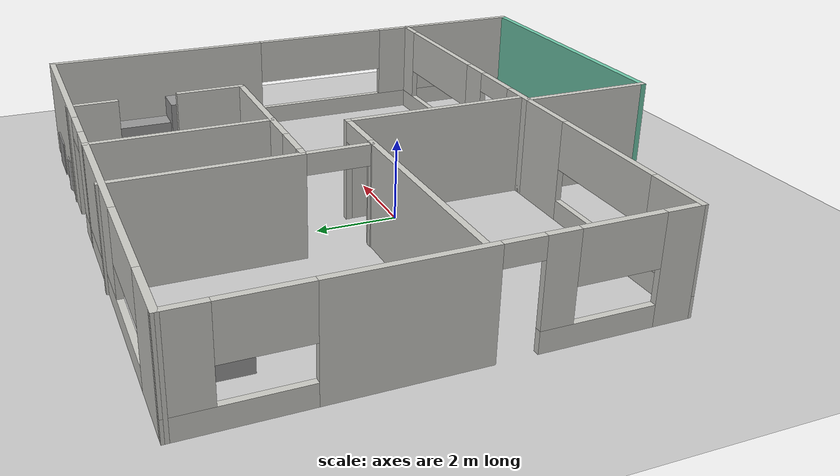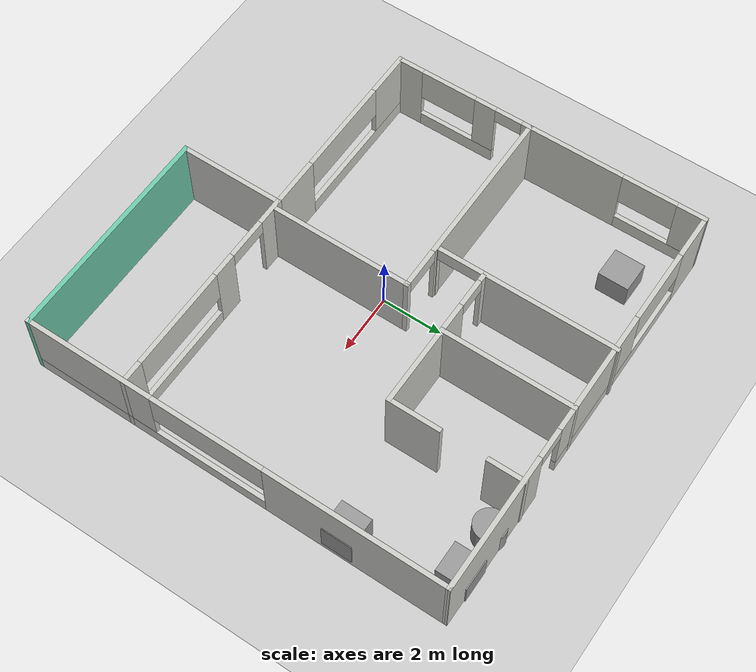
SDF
<sdf version="1.7">
 <world name="default">
  <model name="ground_plane">
   <static>1</static>
   <link name="link">
    <collision name="collision">
     <geometry><plane><normal>0 0 1</normal><size>100 100</size></plane></geometry>
     <surface><friction><ode><mu>100</mu><mu2>50</mu2></ode></friction></surface>
    </collision>
    <visual name="visual">
     <cast_shadows>0</cast_shadows>
     <geometry><plane><normal>0 0 1</normal><size>100 100</size></plane></geometry>
     <material>
      <script><uri>file://media/materials/scripts/gazebo.material</uri><name>Gazebo/Grey</name></script>
     </material>
    </visual>
   </link>
  </model>
  <light name="sun" type="directional">
   <pose>0 0 10 0 -0 0</pose>
   <diffuse>0.8 0.8 0.8 1</diffuse>
   <specular>0.2 0.2 0.2 1</specular>
   <attenuation>
    <range>1000</range>
    <constant>0.9</constant>
    <linear>0.01</linear>
    <quadratic>0.001</quadratic>
   </attenuation>
   <direction>-0.5 0.1 -0.9</direction>
   <spot><inner_angle>0</inner_angle><outer_angle>0</outer_angle><falloff>0</falloff></spot>
  </light>
  <scene><shadows>0</shadows><ambient>0.4 0.4 0.4 1</ambient><background>0.7 0.7 0.7 1</background></scene>
  <physics type="ode">
   <real_time_update_rate>1000</real_time_update_rate>
   <max_step_size>0.001</max_step_size>
   <real_time_factor>1</real_time_factor>
   <ode>
    <solver>
     <type>quick</type>
     <iters>150</iters>
     <precon_iters>0</precon_iters>
     <sor>1.4</sor>
     <use_dynamic_moi_rescaling>1</use_dynamic_moi_rescaling>
    </solver>
    <constraints>
     <cfm>1e-05</cfm>
     <erp>0.2</erp>
     <contact_max_correcting_vel>2000</contact_max_correcting_vel>
     <contact_surface_layer>0.01</contact_surface_layer>
    </constraints>
   </ode>
  </physics>
  <gravity>0 0 -9.8</gravity>
  <magnetic_field>6e-06 2.3e-05 -4.2e-05</magnetic_field>
  <atmosphere type="adiabatic"/>
  <audio><device>default</device></audio>
  <spherical_coordinates>
   <surface_model>EARTH_WGS84</surface_model>
   <latitude_deg>0</latitude_deg>
   <longitude_deg>0</longitude_deg>
   <elevation>0</elevation>
   <heading_deg>0</heading_deg>
  </spherical_coordinates>
  <model name="house">
   <pose>0.555876 0.024235 0 0 -0 0</pose>
   <link name="Wall_0">
    <pose>0.000126 6.8995 0 0 -0 0.002589</pose>
    <visual name="Wall_0_Visual_0">
     <pose>-6.06036 0 1.25 0 -0 0</pose>
     <geometry><box><size>1.54188 0.15 2.5</size></box></geometry>
     <material>
      <script><uri>file://media/materials/scripts/gazebo.material</uri><name>Gazebo/CeilingTiled</name></script>
      <ambient>0.996078 0.47451 0.0196078 1</ambient>
     </material>
     <meta><layer>0</layer></meta>
    </visual>
    <collision name="Wall_0_Collision_0">
     <geometry><box><size>1.54188 0.15 2.5</size></box></geometry>
     <pose>-6.06036 0 1.25 0 -0 0</pose>
    </collision>
    <visual name="Wall_0_Visual_1">
     <pose>4.58809 0 1.25 0 -0 0</pose>
     <geometry><box><size>4.48642 0.15 2.5</size></box></geometry>
     <material>
      <script><uri>file://media/materials/scripts/gazebo.material</uri><name>Gazebo/CeilingTiled</name></script>
      <ambient>0.996078 0.47451 0.0196078 1</ambient>
     </material>
     <meta><layer>0</layer></meta>
    </visual>
    <collision name="Wall_0_Collision_1">
     <geometry><box><size>4.48642 0.15 2.5</size></box></geometry>
     <pose>4.58809 0 1.25 0 -0 0</pose>
    </collision>
    <visual name="Wall_0_Visual_2">
     <pose>-1.96819 0 0.25 0 -0 0</pose>
     <geometry><box><size>6.64243 0.15 0.5</size></box></geometry>
     <material>
      <script><uri>file://media/materials/scripts/gazebo.material</uri><name>Gazebo/CeilingTiled</name></script>
      <ambient>0.996078 0.47451 0.0196078 1</ambient>
     </material>
     <meta><layer>0</layer></meta>
    </visual>
    <collision name="Wall_0_Collision_2">
     <geometry><box><size>6.64243 0.15 0.5</size></box></geometry>
     <pose>-1.96819 0 0.25 0 -0 0</pose>
    </collision>
    <visual name="Wall_0_Visual_3">
     <pose>-0.735676 0 1.5 0 -0 0</pose>
     <geometry><box><size>4.1774 0.15 2</size></box></geometry>
     <material>
      <script><uri>file://media/materials/scripts/gazebo.material</uri><name>Gazebo/CeilingTiled</name></script>
      <ambient>0.996078 0.47451 0.0196078 1</ambient>
     </material>
     <meta><layer>0</layer></meta>
    </visual>
    <collision name="Wall_0_Collision_3">
     <geometry><box><size>4.1774 0.15 2</size></box></geometry>
     <pose>-0.735676 0 1.5 0 -0 0</pose>
    </collision>
    <visual name="Wall_0_Visual_4">
     <pose>-4.05689 0 1.9 0 -0 0</pose>
     <geometry><box><size>2.46504 0.15 1.2</size></box></geometry>
     <material>
      <script><uri>file://media/materials/scripts/gazebo.material</uri><name>Gazebo/CeilingTiled</name></script>
      <ambient>0.996078 0.47451 0.0196078 1</ambient>
     </material>
     <meta><layer>0</layer></meta>
    </visual>
    <collision name="Wall_0_Collision_4">
     <geometry><box><size>2.46504 0.15 1.2</size></box></geometry>
     <pose>-4.05689 0 1.9 0 -0 0</pose>
    </collision>
    <visual name="Wall_0_Visual_5">
     <pose>1.84895 0 2.25 0 -0 0</pose>
     <geometry><box><size>0.991851 0.15 0.5</size></box></geometry>
     <material>
      <script><uri>file://media/materials/scripts/gazebo.material</uri><name>Gazebo/CeilingTiled</name></script>
      <ambient>0.996078 0.47451 0.0196078 1</ambient>
     </material>
     <meta><layer>0</layer></meta>
    </visual>
    <collision name="Wall_0_Collision_5">
     <geometry><box><size>0.991851 0.15 0.5</size></box></geometry>
     <pose>1.84895 0 2.25 0 -0 0</pose>
    </collision>
   </link>
   <link name="Wall_1">
    <pose>6.7564 -0.025497 0 0 -0 -1.5708</pose>
    <visual name="Wall_1_Visual_0">
     <pose>-4.04222 0 1.25 0 -0 0</pose>
     <geometry><box><size>5.91557 0.15 2.5</size></box></geometry>
     <material>
      <script><uri>file://media/materials/scripts/gazebo.material</uri><name>Gazebo/CeilingTiled</name></script>
      <ambient>0.760784 0.662745 0.627451 1</ambient>
     </material>
     <meta><layer>0</layer></meta>
    </visual>
    <collision name="Wall_1_Collision_0">
     <geometry><box><size>5.91557 0.15 2.5</size></box></geometry>
     <pose>-4.04222 0 1.25 0 -0 0</pose>
    </collision>
    <visual name="Wall_1_Visual_1">
     <pose>2.95778 0 0.25 0 -0 0</pose>
     <geometry><box><size>8.08443 0.15 0.5</size></box></geometry>
     <material>
      <script><uri>file://media/materials/scripts/gazebo.material</uri><name>Gazebo/CeilingTiled</name></script>
      <ambient>0.760784 0.662745 0.627451 1</ambient>
     </material>
     <meta><layer>0</layer></meta>
    </visual>
    <collision name="Wall_1_Collision_1">
     <geometry><box><size>8.08443 0.15 0.5</size></box></geometry>
     <pose>2.95778 0 0.25 0 -0 0</pose>
    </collision>
    <visual name="Wall_1_Visual_2">
     <pose>4.82658 0 1.5 0 -0 0</pose>
     <geometry><box><size>4.34685 0.15 2</size></box></geometry>
     <material>
      <script><uri>file://media/materials/scripts/gazebo.material</uri><name>Gazebo/CeilingTiled</name></script>
      <ambient>0.760784 0.662745 0.627451 1</ambient>
     </material>
     <meta><layer>0</layer></meta>
    </visual>
    <collision name="Wall_1_Collision_2">
     <geometry><box><size>4.34685 0.15 2</size></box></geometry>
     <pose>4.82658 0 1.5 0 -0 0</pose>
    </collision>
    <visual name="Wall_1_Visual_3">
     <pose>0.78436 0 1.9 0 -0 0</pose>
     <geometry><box><size>3.73759 0.15 1.2</size></box></geometry>
     <material>
      <script><uri>file://media/materials/scripts/gazebo.material</uri><name>Gazebo/CeilingTiled</name></script>
      <ambient>0.760784 0.662745 0.627451 1</ambient>
     </material>
     <meta><layer>0</layer></meta>
    </visual>
    <collision name="Wall_1_Collision_3">
     <geometry><box><size>3.73759 0.15 1.2</size></box></geometry>
     <pose>0.78436 0 1.9 0 -0 0</pose>
    </collision>
   </link>
   <link name="Wall_11">
    <pose>-3.41085 1.02064 0 0 -0 0.002657</pose>
    <visual name="Wall_11_Visual_0">
     <pose>-0.703414 0 1.25 0 -0 0</pose>
     <geometry><box><size>5.32652 0.15 2.5</size></box></geometry>
     <material>
      <script><uri>file://media/materials/scripts/gazebo.material</uri><name>Gazebo/CeilingTiled</name></script>
      <ambient>0.996078 0.47451 0.0196078 1</ambient>
     </material>
     <meta><layer>0</layer></meta>
    </visual>
    <collision name="Wall_11_Collision_0">
     <geometry><box><size>5.32652 0.15 2.5</size></box></geometry>
     <pose>-0.703414 0 1.25 0 -0 0</pose>
    </collision>
    <visual name="Wall_11_Visual_1">
     <pose>3.28832 0 1.25 0 -0 0</pose>
     <geometry><box><size>0.156697 0.15 2.5</size></box></geometry>
     <material>
      <script><uri>file://media/materials/scripts/gazebo.material</uri><name>Gazebo/CeilingTiled</name></script>
      <ambient>0.996078 0.47451 0.0196078 1</ambient>
     </material>
     <meta><layer>0</layer></meta>
    </visual>
    <collision name="Wall_11_Collision_1">
     <geometry><box><size>0.156697 0.15 2.5</size></box></geometry>
     <pose>3.28832 0 1.25 0 -0 0</pose>
    </collision>
    <visual name="Wall_11_Visual_2">
     <pose>2.58491 0 2.25 0 -0 0</pose>
     <geometry><box><size>1.25013 0.15 0.5</size></box></geometry>
     <material>
      <script><uri>file://media/materials/scripts/gazebo.material</uri><name>Gazebo/CeilingTiled</name></script>
      <ambient>0.996078 0.47451 0.0196078 1</ambient>
     </material>
     <meta><layer>0</layer></meta>
    </visual>
    <collision name="Wall_11_Collision_2">
     <geometry><box><size>1.25013 0.15 0.5</size></box></geometry>
     <pose>2.58491 0 2.25 0 -0 0</pose>
    </collision>
   </link>
   <link name="Wall_14">
    <collision name="Wall_14_Collision">
     <geometry><box><size>4.75 0.15 2.5</size></box></geometry>
     <pose>0 0 1.25 0 -0 0</pose>
    </collision>
    <visual name="Wall_14_Visual">
     <pose>0 0 1.25 0 -0 0</pose>
     <geometry><box><size>4.75 0.15 2.5</size></box></geometry>
     <material>
      <script><uri>file://media/materials/scripts/gazebo.material</uri><name>Gazebo/CeilingTiled</name></script>
      <ambient>1 0.764706 0.305882 1</ambient>
     </material>
     <meta><layer>0</layer></meta>
    </visual>
    <pose>-0.119598 -1.3056 0 0 -0 -1.5708</pose>
   </link>
   <link name="Wall_16">
    <pose>-1.62616 4.0255 0 0 -0 -1.5708</pose>
    <visual name="Wall_16_Visual_0">
     <pose>-0.787699 0 1.25 0 -0 0</pose>
     <geometry><box><size>4.4246 0.15 2.5</size></box></geometry>
     <material>
      <script><uri>file://media/materials/scripts/gazebo.material</uri><name>Gazebo/CeilingTiled</name></script>
      <ambient>0.760784 0.662745 0.627451 1</ambient>
     </material>
     <meta><layer>0</layer></meta>
    </visual>
    <collision name="Wall_16_Collision_0">
     <geometry><box><size>4.4246 0.15 2.5</size></box></geometry>
     <pose>-0.787699 0 1.25 0 -0 0</pose>
    </collision>
    <visual name="Wall_16_Visual_1">
     <pose>2.95143 0 1.25 0 -0 0</pose>
     <geometry><box><size>0.097134 0.15 2.5</size></box></geometry>
     <material>
      <script><uri>file://media/materials/scripts/gazebo.material</uri><name>Gazebo/CeilingTiled</name></script>
      <ambient>0.760784 0.662745 0.627451 1</ambient>
     </material>
     <meta><layer>0</layer></meta>
    </visual>
    <collision name="Wall_16_Collision_1">
     <geometry><box><size>0.097134 0.15 2.5</size></box></geometry>
     <pose>2.95143 0 1.25 0 -0 0</pose>
    </collision>
    <visual name="Wall_16_Visual_2">
     <pose>2.16373 0 2.25 0 -0 0</pose>
     <geometry><box><size>1.47826 0.15 0.5</size></box></geometry>
     <material>
      <script><uri>file://media/materials/scripts/gazebo.material</uri><name>Gazebo/CeilingTiled</name></script>
      <ambient>0.760784 0.662745 0.627451 1</ambient>
     </material>
     <meta><layer>0</layer></meta>
    </visual>
    <collision name="Wall_16_Collision_2">
     <geometry><box><size>1.47826 0.15 0.5</size></box></geometry>
     <pose>2.16373 0 2.25 0 -0 0</pose>
    </collision>
   </link>
   <link name="Wall_18">
    <pose>-0.478754 2.6482 0 0 -0 3.14159</pose>
    <visual name="Wall_18_Visual_0">
     <pose>-0.595451 0 1.25 0 -0 0</pose>
     <geometry><box><size>1.0591 0.15 2.5</size></box></geometry>
     <material>
      <script><uri>file://media/materials/scripts/gazebo.material</uri><name>Gazebo/CeilingTiled</name></script>
      <ambient>0.435294 0.796078 0.67451 1</ambient>
     </material>
     <meta><layer>0</layer></meta>
    </visual>
    <collision name="Wall_18_Collision_0">
     <geometry><box><size>1.0591 0.15 2.5</size></box></geometry>
     <pose>-0.595451 0 1.25 0 -0 0</pose>
    </collision>
    <visual name="Wall_18_Visual_1">
     <pose>1.00268 0 1.25 0 -0 0</pose>
     <geometry><box><size>0.244641 0.15 2.5</size></box></geometry>
     <material>
      <script><uri>file://media/materials/scripts/gazebo.material</uri><name>Gazebo/CeilingTiled</name></script>
      <ambient>0.435294 0.796078 0.67451 1</ambient>
     </material>
     <meta><layer>0</layer></meta>
    </visual>
    <collision name="Wall_18_Collision_1">
     <geometry><box><size>0.244641 0.15 2.5</size></box></geometry>
     <pose>1.00268 0 1.25 0 -0 0</pose>
    </collision>
    <visual name="Wall_18_Visual_2">
     <pose>0.407228 0 2.25 0 -0 0</pose>
     <geometry><box><size>0.946261 0.15 0.5</size></box></geometry>
     <material>
      <script><uri>file://media/materials/scripts/gazebo.material</uri><name>Gazebo/CeilingTiled</name></script>
      <ambient>0.435294 0.796078 0.67451 1</ambient>
     </material>
     <meta><layer>0</layer></meta>
    </visual>
    <collision name="Wall_18_Collision_2">
     <geometry><box><size>0.946261 0.15 0.5</size></box></geometry>
     <pose>0.407228 0 2.25 0 -0 0</pose>
    </collision>
   </link>
   <link name="Wall_20">
    <collision name="Wall_20_Collision">
     <geometry><box><size>4.40603 0.15 2.5</size></box></geometry>
     <pose>0 0 1.25 0 -0 0</pose>
    </collision>
    <visual name="Wall_20_Visual">
     <pose>0 0 1.25 0 -0 0</pose>
     <geometry><box><size>4.40603 0.15 2.5</size></box></geometry>
     <material>
      <script><uri>file://media/materials/scripts/gazebo.material</uri><name>Gazebo/CeilingTiled</name></script>
      <ambient>0.996078 0.47451 0.0196078 1</ambient>
     </material>
     <meta><layer>0</layer></meta>
    </visual>
    <pose>0.571246 4.77622 0 0 -0 -1.5708</pose>
   </link>
   <link name="Wall_21">
    <collision name="Wall_21_Collision">
     <geometry><box><size>2.75 0.15 2.5</size></box></geometry>
     <pose>0 0 1.25 0 -0 0</pose>
    </collision>
    <visual name="Wall_21_Visual">
     <pose>0 0 1.25 0 -0 0</pose>
     <geometry><box><size>2.75 0.15 2.5</size></box></geometry>
     <material>
      <script><uri>file://media/materials/scripts/gazebo.material</uri><name>Gazebo/CeilingTiled</name></script>
      <ambient>0.996078 0.47451 0.0196078 1</ambient>
     </material>
     <meta><layer>0</layer></meta>
    </visual>
    <pose>1.87125 2.6482 0 0 -0 0</pose>
   </link>
   <link name="Wall_22">
    <collision name="Wall_22_Collision">
     <geometry><box><size>1.75 0.15 2.5</size></box></geometry>
     <pose>0 0 1.25 0 -0 0</pose>
    </collision>
    <visual name="Wall_22_Visual">
     <pose>0 0 1.25 0 -0 0</pose>
     <geometry><box><size>1.75 0.15 2.5</size></box></geometry>
     <material>
      <script><uri>file://media/materials/scripts/gazebo.material</uri><name>Gazebo/CeilingTiled</name></script>
      <ambient>0.760784 0.662745 0.627451 1</ambient>
     </material>
     <meta><layer>0</layer></meta>
    </visual>
    <pose>3.17125 3.44821 0 0 -0 1.5708</pose>
   </link>
   <link name="Wall_25">
    <collision name="Wall_25_Collision">
     <geometry><box><size>1.25 0.15 2.5</size></box></geometry>
     <pose>0 0 1.25 0 -0 0</pose>
    </collision>
    <visual name="Wall_25_Visual">
     <pose>0 0 1.25 0 -0 0</pose>
     <geometry><box><size>1.25 0.15 2.5</size></box></geometry>
     <material>
      <script><uri>file://media/materials/scripts/gazebo.material</uri><name>Gazebo/CeilingTiled</name></script>
      <ambient>0.435294 0.796078 0.67451 1</ambient>
     </material>
     <meta><layer>0</layer></meta>
    </visual>
    <pose>3.17029 6.38306 0 0 -0 -1.5708</pose>
   </link>
   <link name="Wall_3">
    <collision name="Wall_3_Collision">
     <geometry><box><size>7.25 0.15 2.5</size></box></geometry>
     <pose>0 0 1.25 0 -0 0</pose>
    </collision>
    <visual name="Wall_3_Visual">
     <pose>0 0 1.25 0 -0 0</pose>
     <geometry><box><size>7.25 0.15 2.5</size></box></geometry>
     <material>
      <script><uri>file://media/materials/scripts/gazebo.material</uri><name>Gazebo/Grey</name></script>
      <ambient>0.435294 0.796078 0.67451 1</ambient>
     </material>
     <meta><layer>0</layer></meta>
    </visual>
    <pose>3.2064 -6.9505 0 0 -0 3.14159</pose>
   </link>
   <link name="Wall_4">
    <collision name="Wall_4_Collision">
     <geometry><box><size>3.5 0.15 2.5</size></box></geometry>
     <pose>0 0 1.25 0 -0 0</pose>
    </collision>
    <visual name="Wall_4_Visual">
     <pose>0 0 1.25 0 -0 0</pose>
     <geometry><box><size>3.5 0.15 2.5</size></box></geometry>
     <material>
      <script><uri>file://media/materials/scripts/gazebo.material</uri><name>Gazebo/CeilingTiled</name></script>
      <ambient>0.435294 0.796078 0.67451 1</ambient>
     </material>
     <meta><layer>0</layer></meta>
    </visual>
    <pose>-0.343599 -5.2755 0 0 -0 1.5708</pose>
   </link>
   <link name="Wall_6">
    <pose>3.2064 -3.6005 0 0 -0 0</pose>
    <visual name="Wall_6_Visual_0">
     <pose>-3.15268 0 1.25 0 -0 0</pose>
     <geometry><box><size>0.944631 0.15 2.5</size></box></geometry>
     <material>
      <script><uri>file://media/materials/scripts/gazebo.material</uri><name>Gazebo/CeilingTiled</name></script>
      <ambient>0.996078 0.47451 0.0196078 1</ambient>
     </material>
     <meta><layer>0</layer></meta>
    </visual>
    <collision name="Wall_6_Collision_0">
     <geometry><box><size>0.944631 0.15 2.5</size></box></geometry>
     <pose>-3.15268 0 1.25 0 -0 0</pose>
    </collision>
    <visual name="Wall_6_Visual_1">
     <pose>-0.939808 0 1.25 0 -0 0</pose>
     <geometry><box><size>0.802161 0.15 2.5</size></box></geometry>
     <material>
      <script><uri>file://media/materials/scripts/gazebo.material</uri><name>Gazebo/CeilingTiled</name></script>
      <ambient>0.996078 0.47451 0.0196078 1</ambient>
     </material>
     <meta><layer>0</layer></meta>
    </visual>
    <collision name="Wall_6_Collision_1">
     <geometry><box><size>0.802161 0.15 2.5</size></box></geometry>
     <pose>-0.939808 0 1.25 0 -0 0</pose>
    </collision>
    <visual name="Wall_6_Visual_2">
     <pose>1.54314 0 0.25 0 -0 0</pose>
     <geometry><box><size>4.16373 0.15 0.5</size></box></geometry>
     <material>
      <script><uri>file://media/materials/scripts/gazebo.material</uri><name>Gazebo/CeilingTiled</name></script>
      <ambient>0.996078 0.47451 0.0196078 1</ambient>
     </material>
     <meta><layer>0</layer></meta>
    </visual>
    <collision name="Wall_6_Collision_2">
     <geometry><box><size>4.16373 0.15 0.5</size></box></geometry>
     <pose>1.54314 0 0.25 0 -0 0</pose>
    </collision>
    <visual name="Wall_6_Visual_3">
     <pose>3.23845 0 1.5 0 -0 0</pose>
     <geometry><box><size>0.773099 0.15 2</size></box></geometry>
     <material>
      <script><uri>file://media/materials/scripts/gazebo.material</uri><name>Gazebo/CeilingTiled</name></script>
      <ambient>0.996078 0.47451 0.0196078 1</ambient>
     </material>
     <meta><layer>0</layer></meta>
    </visual>
    <collision name="Wall_6_Collision_3">
     <geometry><box><size>0.773099 0.15 2</size></box></geometry>
     <pose>3.23845 0 1.5 0 -0 0</pose>
    </collision>
    <visual name="Wall_6_Visual_4">
     <pose>1.15659 0 1.9 0 -0 0</pose>
     <geometry><box><size>3.39063 0.15 1.2</size></box></geometry>
     <material>
      <script><uri>file://media/materials/scripts/gazebo.material</uri><name>Gazebo/CeilingTiled</name></script>
      <ambient>0.996078 0.47451 0.0196078 1</ambient>
     </material>
     <meta><layer>0</layer></meta>
    </visual>
    <collision name="Wall_6_Collision_4">
     <geometry><box><size>3.39063 0.15 1.2</size></box></geometry>
     <pose>1.15659 0 1.9 0 -0 0</pose>
    </collision>
    <visual name="Wall_6_Visual_5">
     <pose>-2.01063 0 2.25 0 -0 0</pose>
     <geometry><box><size>1.33948 0.15 0.5</size></box></geometry>
     <material>
      <script><uri>file://media/materials/scripts/gazebo.material</uri><name>Gazebo/CeilingTiled</name></script>
      <ambient>0.996078 0.47451 0.0196078 1</ambient>
     </material>
     <meta><layer>0</layer></meta>
    </visual>
    <collision name="Wall_6_Collision_5">
     <geometry><box><size>1.33948 0.15 0.5</size></box></geometry>
     <pose>-2.01063 0 2.25 0 -0 0</pose>
    </collision>
   </link>
   <link name="Wall_8">
    <pose>-3.5186 -3.6005 0 0 -0 3.14159</pose>
    <visual name="Wall_8_Visual_0">
     <pose>-2.38872 0 1.25 0 -0 0</pose>
     <geometry><box><size>1.72255 0.15 2.5</size></box></geometry>
     <material>
      <script><uri>file://media/materials/scripts/gazebo.material</uri><name>Gazebo/CeilingTiled</name></script>
      <ambient>0.996078 0.47451 0.0196078 1</ambient>
     </material>
     <meta><layer>0</layer></meta>
    </visual>
    <collision name="Wall_8_Collision_0">
     <geometry><box><size>1.72255 0.15 2.5</size></box></geometry>
     <pose>-2.38872 0 1.25 0 -0 0</pose>
    </collision>
    <visual name="Wall_8_Visual_1">
     <pose>0.861275 0 0.25 0 -0 0</pose>
     <geometry><box><size>4.77745 0.15 0.5</size></box></geometry>
     <material>
      <script><uri>file://media/materials/scripts/gazebo.material</uri><name>Gazebo/CeilingTiled</name></script>
      <ambient>0.996078 0.47451 0.0196078 1</ambient>
     </material>
     <meta><layer>0</layer></meta>
    </visual>
    <collision name="Wall_8_Collision_1">
     <geometry><box><size>4.77745 0.15 0.5</size></box></geometry>
     <pose>0.861275 0 0.25 0 -0 0</pose>
    </collision>
    <visual name="Wall_8_Visual_2">
     <pose>2.4872 0 1.5 0 -0 0</pose>
     <geometry><box><size>1.52561 0.15 2</size></box></geometry>
     <material>
      <script><uri>file://media/materials/scripts/gazebo.material</uri><name>Gazebo/CeilingTiled</name></script>
      <ambient>0.996078 0.47451 0.0196078 1</ambient>
     </material>
     <meta><layer>0</layer></meta>
    </visual>
    <collision name="Wall_8_Collision_2">
     <geometry><box><size>1.52561 0.15 2</size></box></geometry>
     <pose>2.4872 0 1.5 0 -0 0</pose>
    </collision>
    <visual name="Wall_8_Visual_3">
     <pose>0.098473 0 1.9 0 -0 0</pose>
     <geometry><box><size>3.25184 0.15 1.2</size></box></geometry>
     <material>
      <script><uri>file://media/materials/scripts/gazebo.material</uri><name>Gazebo/CeilingTiled</name></script>
      <ambient>0.996078 0.47451 0.0196078 1</ambient>
     </material>
     <meta><layer>0</layer></meta>
    </visual>
    <collision name="Wall_8_Collision_3">
     <geometry><box><size>3.25184 0.15 1.2</size></box></geometry>
     <pose>0.098473 0 1.9 0 -0 0</pose>
    </collision>
   </link>
   <link name="Wall_9">
    <pose>-6.72487 1.64076 0 0 -0 1.57676</pose>
    <visual name="Wall_9_Visual_0">
     <pose>-4.85339 0 1.25 0 -0 0</pose>
     <geometry><box><size>0.925913 0.15 2.5</size></box></geometry>
     <material>
      <script><uri>file://media/materials/scripts/gazebo.material</uri><name>Gazebo/CeilingTiled</name></script>
      <ambient>0.760784 0.662745 0.627451 1</ambient>
     </material>
     <meta><layer>0</layer></meta>
    </visual>
    <collision name="Wall_9_Collision_0">
     <geometry><box><size>0.925913 0.15 2.5</size></box></geometry>
     <pose>-4.85339 0 1.25 0 -0 0</pose>
    </collision>
    <visual name="Wall_9_Visual_1">
     <pose>0.824172 0 1.25 0 -0 0</pose>
     <geometry><box><size>3.45139 0.15 2.5</size></box></geometry>
     <material>
      <script><uri>file://media/materials/scripts/gazebo.material</uri><name>Gazebo/CeilingTiled</name></script>
      <ambient>0.760784 0.662745 0.627451 1</ambient>
     </material>
     <meta><layer>0</layer></meta>
    </visual>
    <collision name="Wall_9_Collision_1">
     <geometry><box><size>3.45139 0.15 2.5</size></box></geometry>
     <pose>0.824172 0 1.25 0 -0 0</pose>
    </collision>
    <visual name="Wall_9_Visual_2">
     <pose>-3.09598 0 0.25 0 -0 0</pose>
     <geometry><box><size>2.58891 0.15 0.5</size></box></geometry>
     <material>
      <script><uri>file://media/materials/scripts/gazebo.material</uri><name>Gazebo/CeilingTiled</name></script>
      <ambient>0.760784 0.662745 0.627451 1</ambient>
     </material>
     <meta><layer>0</layer></meta>
    </visual>
    <collision name="Wall_9_Collision_2">
     <geometry><box><size>2.58891 0.15 0.5</size></box></geometry>
     <pose>-3.09598 0 0.25 0 -0 0</pose>
    </collision>
    <visual name="Wall_9_Visual_3">
     <pose>3.93311 0 0.25 0 -0 0</pose>
     <geometry><box><size>2.76648 0.15 0.5</size></box></geometry>
     <material>
      <script><uri>file://media/materials/scripts/gazebo.material</uri><name>Gazebo/CeilingTiled</name></script>
      <ambient>0.760784 0.662745 0.627451 1</ambient>
     </material>
     <meta><layer>0</layer></meta>
    </visual>
    <collision name="Wall_9_Collision_3">
     <geometry><box><size>2.76648 0.15 0.5</size></box></geometry>
     <pose>3.93311 0 0.25 0 -0 0</pose>
    </collision>
    <visual name="Wall_9_Visual_4">
     <pose>-2.16364 0 1.5 0 -0 0</pose>
     <geometry><box><size>0.724233 0.15 2</size></box></geometry>
     <material>
      <script><uri>file://media/materials/scripts/gazebo.material</uri><name>Gazebo/CeilingTiled</name></script>
      <ambient>0.760784 0.662745 0.627451 1</ambient>
     </material>
     <meta><layer>0</layer></meta>
    </visual>
    <collision name="Wall_9_Collision_4">
     <geometry><box><size>0.724233 0.15 2</size></box></geometry>
     <pose>-2.16364 0 1.5 0 -0 0</pose>
    </collision>
    <visual name="Wall_9_Visual_5">
     <pose>-2.16364 0 1.5 0 -0 0</pose>
     <geometry><box><size>0.724233 0.15 2</size></box></geometry>
     <material>
      <script><uri>file://media/materials/scripts/gazebo.material</uri><name>Gazebo/CeilingTiled</name></script>
      <ambient>0.760784 0.662745 0.627451 1</ambient>
     </material>
     <meta><layer>0</layer></meta>
    </visual>
    <collision name="Wall_9_Collision_5">
     <geometry><box><size>0.724233 0.15 2</size></box></geometry>
     <pose>-2.16364 0 1.5 0 -0 0</pose>
    </collision>
    <visual name="Wall_9_Visual_6">
     <pose>4.83082 0 1.5 0 -0 0</pose>
     <geometry><box><size>0.971056 0.15 2</size></box></geometry>
     <material>
      <script><uri>file://media/materials/scripts/gazebo.material</uri><name>Gazebo/CeilingTiled</name></script>
      <ambient>0.760784 0.662745 0.627451 1</ambient>
     </material>
     <meta><layer>0</layer></meta>
    </visual>
    <collision name="Wall_9_Collision_6">
     <geometry><box><size>0.971056 0.15 2</size></box></geometry>
     <pose>4.83082 0 1.5 0 -0 0</pose>
    </collision>
    <visual name="Wall_9_Visual_7">
     <pose>-3.4581 0 1.9 0 -0 0</pose>
     <geometry><box><size>1.86468 0.15 1.2</size></box></geometry>
     <material>
      <script><uri>file://media/materials/scripts/gazebo.material</uri><name>Gazebo/CeilingTiled</name></script>
      <ambient>0.760784 0.662745 0.627451 1</ambient>
     </material>
     <meta><layer>0</layer></meta>
    </visual>
    <collision name="Wall_9_Collision_7">
     <geometry><box><size>1.86468 0.15 1.2</size></box></geometry>
     <pose>-3.4581 0 1.9 0 -0 0</pose>
    </collision>
    <visual name="Wall_9_Visual_8">
     <pose>3.44758 0 1.9 0 -0 0</pose>
     <geometry><box><size>1.79543 0.15 1.2</size></box></geometry>
     <material>
      <script><uri>file://media/materials/scripts/gazebo.material</uri><name>Gazebo/CeilingTiled</name></script>
      <ambient>0.760784 0.662745 0.627451 1</ambient>
     </material>
     <meta><layer>0</layer></meta>
    </visual>
    <collision name="Wall_9_Collision_8">
     <geometry><box><size>1.79543 0.15 1.2</size></box></geometry>
     <pose>3.44758 0 1.9 0 -0 0</pose>
    </collision>
    <visual name="Wall_9_Visual_9">
     <pose>-1.35152 0 2.25 0 -0 0</pose>
     <geometry><box><size>0.9 0.15 0.5</size></box></geometry>
     <material>
      <script><uri>file://media/materials/scripts/gazebo.material</uri><name>Gazebo/CeilingTiled</name></script>
      <ambient>0.760784 0.662745 0.627451 1</ambient>
     </material>
     <meta><layer>0</layer></meta>
    </visual>
    <collision name="Wall_9_Collision_9">
     <geometry><box><size>0.9 0.15 0.5</size></box></geometry>
     <pose>-1.35152 0 2.25 0 -0 0</pose>
    </collision>
    <visual name="Wall_9_Visual_10">
     <pose>-1.35152 0 2.25 0 -0 0</pose>
     <geometry><box><size>0.9 0.15 0.5</size></box></geometry>
     <material>
      <script><uri>file://media/materials/scripts/gazebo.material</uri><name>Gazebo/CeilingTiled</name></script>
      <ambient>0.760784 0.662745 0.627451 1</ambient>
     </material>
     <meta><layer>0</layer></meta>
    </visual>
    <collision name="Wall_9_Collision_10">
     <geometry><box><size>0.9 0.15 0.5</size></box></geometry>
     <pose>-1.35152 0 2.25 0 -0 0</pose>
    </collision>
   </link>
   <static>1</static>
  </model>
  <model name="unit_box">
   <pose>-4.38505 5.43531 0.339661 0.000114 -0 -0.007547</pose>
   <link name="link">
    <inertial>
     <mass>1</mass>
     <inertia>
      <ixx>0.166667</ixx>
      <ixy>0</ixy>
      <ixz>0</ixz>
      <iyy>0.166667</iyy>
      <iyz>0</iyz>
      <izz>0.166667</izz>
     </inertia>
    </inertial>
    <collision name="collision"><geometry><box><size>1 1 1</size></box></geometry></collision>
    <visual name="visual">
     <geometry><box><size>1 1 1</size></box></geometry>
     <material>
      <script><name>Gazebo/Grey</name><uri>file://media/materials/scripts/gazebo.material</uri></script>
     </material>
    </visual>
   </link>
  </model>
  <model name="unit_cylinder">
   <pose>4.59664 6.55509 0.299167 -0 -0 -0</pose>
   <link name="link">
    <inertial>
     <mass>1</mass>
     <inertia><ixx>0.145833</ixx><ixy>0</ixy><ixz>0</ixz><iyy>0.145833</iyy><iyz>0</iyz><izz>0.125</izz></inertia>
    </inertial>
    <collision name="collision">
     <geometry><cylinder><radius>0.5</radius><length>0.999996</length></cylinder></geometry>
    </collision>
    <visual name="visual">
     <geometry><cylinder><radius>0.5</radius><length>0.999996</length></cylinder></geometry>
     <material>
      <script><name>Gazebo/Grey</name><uri>file://media/materials/scripts/gazebo.material</uri></script>
     </material>
    </visual>
   </link>
  </model>
  <model name="unit_box_0">
   <pose>6.91364 3.46992 0.732235 0 -0 1.56421</pose>
   <link name="link">
    <inertial>
     <mass>1</mass>
     <inertia>
      <ixx>0.166667</ixx>
      <ixy>0</ixy>
      <ixz>0</ixz>
      <iyy>0.166667</iyy>
      <iyz>0</iyz>
      <izz>0.166667</izz>
     </inertia>
    </inertial>
    <collision name="collision"><geometry><box><size>0.999995 1 1</size></box></geometry></collision>
    <visual name="visual">
     <geometry><box><size>0.999995 1 1</size></box></geometry>
     <material>
      <script><name>Gazebo/Grey</name><uri>file://media/materials/scripts/gazebo.material</uri></script>
     </material>
    </visual>
   </link>
  </model>
  <model name="unit_box_1">
   <pose>6.03607 6.54664 0.327144 0 -6.7e-05 0.005969</pose>
   <link name="link">
    <inertial>
     <mass>1</mass>
     <inertia>
      <ixx>0.166667</ixx>
      <ixy>0</ixy>
      <ixz>0</ixz>
      <iyy>0.166667</iyy>
      <iyz>0</iyz>
      <izz>0.166667</izz>
     </inertia>
    </inertial>
    <collision name="collision"><geometry><box><size>1 0.999996 1</size></box></geometry></collision>
    <visual name="visual">
     <geometry><box><size>1 0.999996 1</size></box></geometry>
     <material>
      <script><name>Gazebo/Grey</name><uri>file://media/materials/scripts/gazebo.material</uri></script>
     </material>
    </visual>
   </link>
  </model>
  <model name="unit_box_1_clone">
   <pose>6.92051 5.04958 0.327146 0 6.5e-05 -1.57736</pose>
   <link name="link">
    <inertial>
     <mass>1</mass>
     <inertia>
      <ixx>0.166667</ixx>
      <ixy>0</ixy>
      <ixz>0</ixz>
      <iyy>0.166667</iyy>
      <iyz>0</iyz>
      <izz>0.166667</izz>
     </inertia>
    </inertial>
    <collision name="collision"><geometry><box><size>2.38889 0.608255 0.654447</size></box></geometry></collision>
    <visual name="visual">
     <geometry><box><size>2.38889 0.608255 0.654447</size></box></geometry>
     <material>
      <script><name>Gazebo/Grey</name><uri>file://media/materials/scripts/gazebo.material</uri></script>
     </material>
    </visual>
   </link>
  </model>
 </world>
</sdf>
